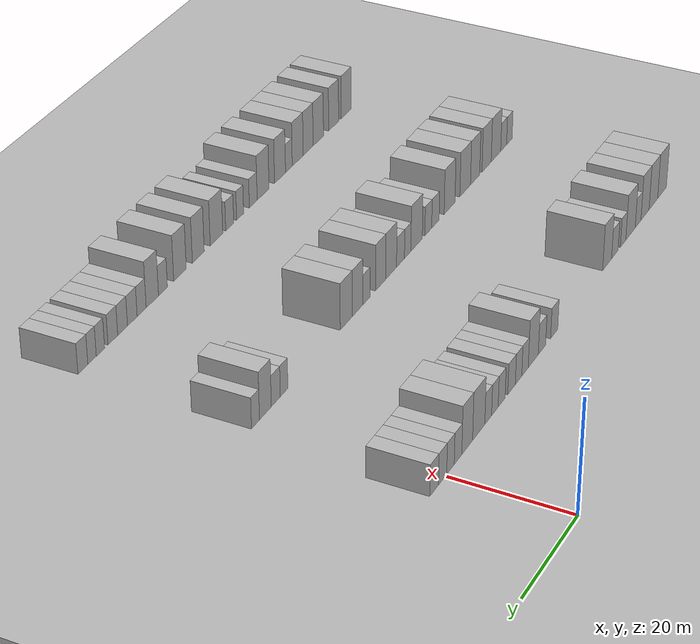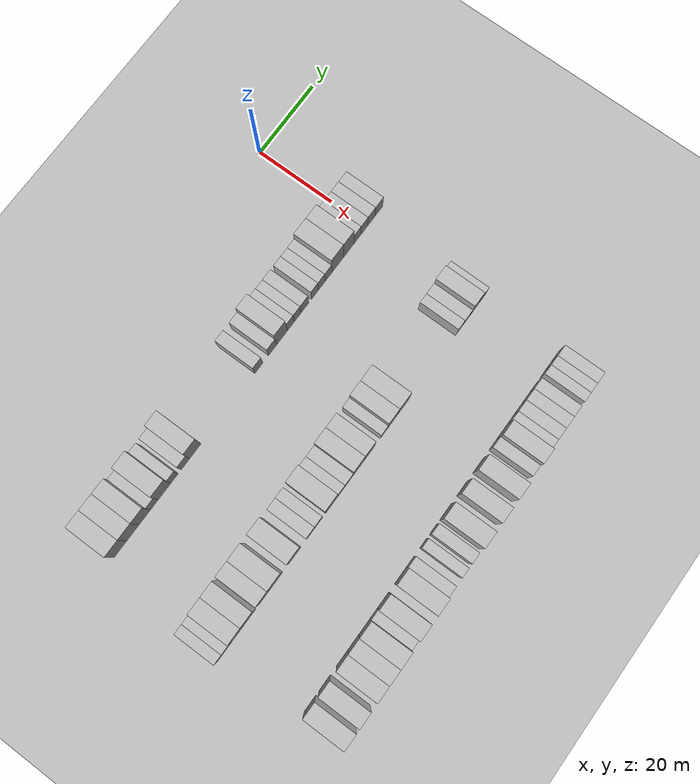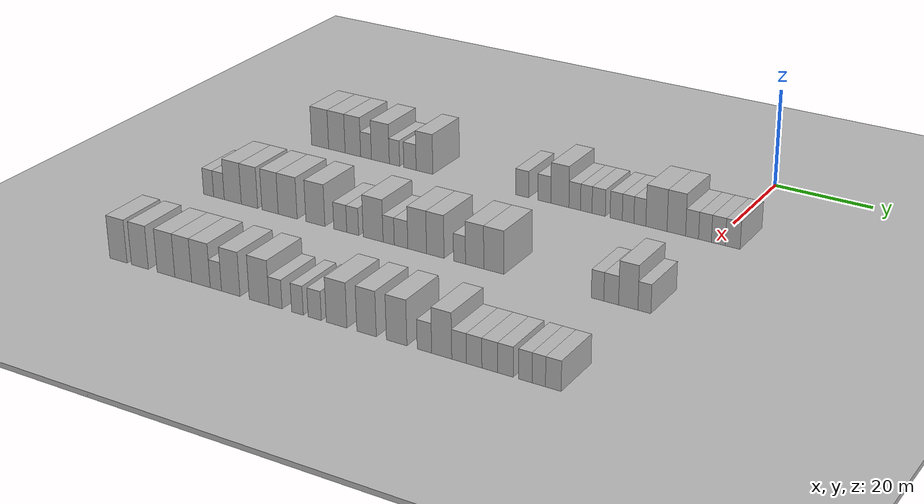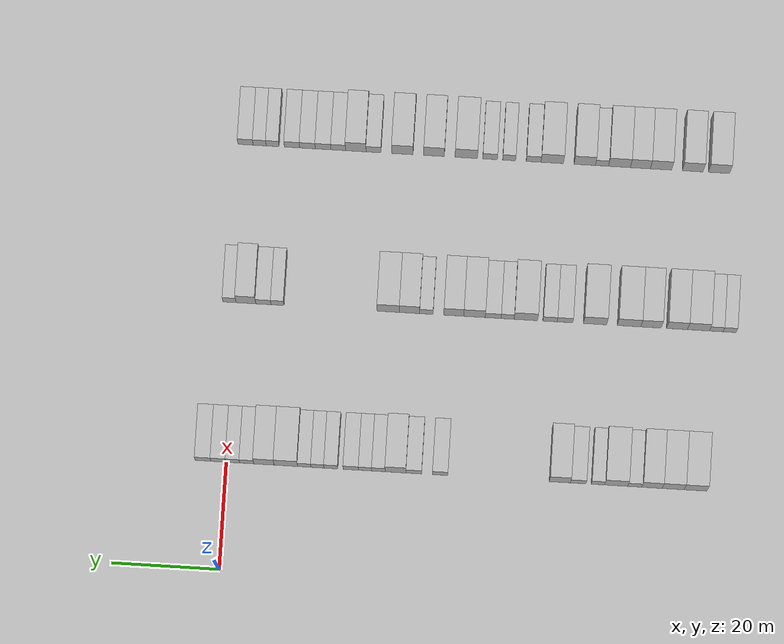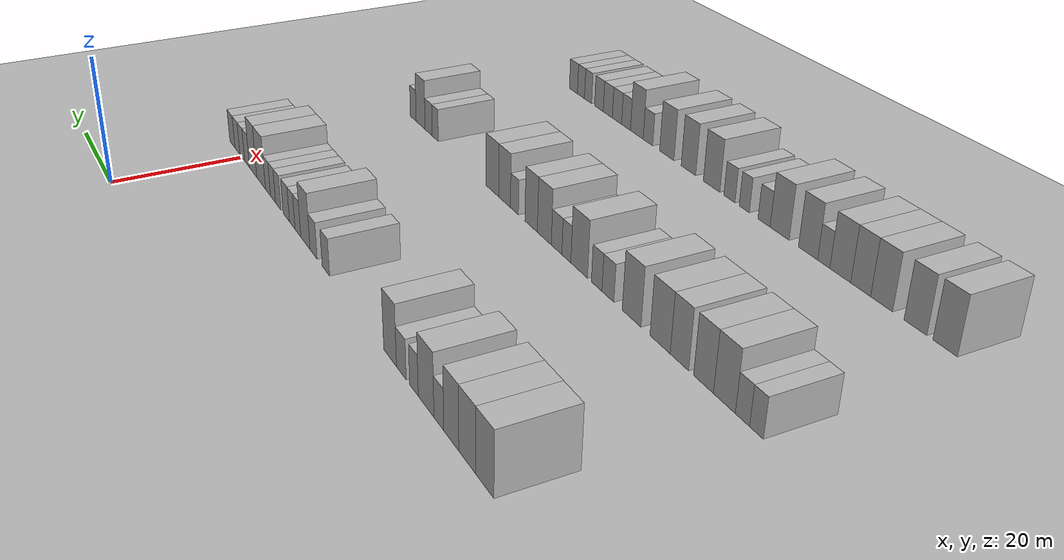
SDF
<sdf version="1.6">
 <world name="default">
  <include><name>ground_plane_1</name><uri>model://HANNAS_ground_plane</uri></include>
  <include>
   <name>ground_plane_2</name>
   <uri>model://HANNAS_ground_plane</uri>
   <pose>100 0 0  0 0 0</pose>
  </include>
  <model name="building_49">
   <static>1</static>
   <pose>25.0000 -87.2521 0 0.000000 0.000000 0.000000</pose>
   <link name="link">
    <pose>0 0 4.50 0 0 0</pose>
    <collision name="collision"><geometry><box><size>10.0000 4.2227 9.0000</size></box></geometry></collision>
    <visual name="visual">
     <cast_shadows>0</cast_shadows>
     <geometry><box><size>10.0000 4.2227 9.0000</size></box></geometry>
     <material>
      <script>
       <uri>model://HANNAS_wall/materials/scripts</uri>
       <uri>model://HANNAS_wall/materials/textures</uri>
       <name>vrc/HANNAS_wall</name>
      </script>
     </material>
    </visual>
   </link>
  </model>
  <model name="building_50">
   <static>1</static>
   <pose>25.0000 -83.1014 0 0.000000 0.000000 0.000000</pose>
   <link name="link">
    <pose>0 0 4.50 0 0 0</pose>
    <collision name="collision"><geometry><box><size>10.0000 4.0787 9.0000</size></box></geometry></collision>
    <visual name="visual">
     <cast_shadows>0</cast_shadows>
     <geometry><box><size>10.0000 4.0787 9.0000</size></box></geometry>
     <material>
      <script>
       <uri>model://HANNAS_wall/materials/scripts</uri>
       <uri>model://HANNAS_wall/materials/textures</uri>
       <name>vrc/HANNAS_wall</name>
      </script>
     </material>
    </visual>
   </link>
  </model>
  <model name="building_51">
   <static>1</static>
   <pose>25.0000 -79.1638 0 0.000000 0.000000 0.000000</pose>
   <link name="link">
    <pose>0 0 4.50 0 0 0</pose>
    <collision name="collision"><geometry><box><size>10.0000 3.7964 9.0000</size></box></geometry></collision>
    <visual name="visual">
     <cast_shadows>0</cast_shadows>
     <geometry><box><size>10.0000 3.7964 9.0000</size></box></geometry>
     <material>
      <script>
       <uri>model://HANNAS_wall/materials/scripts</uri>
       <uri>model://HANNAS_wall/materials/textures</uri>
       <name>vrc/HANNAS_wall</name>
      </script>
     </material>
    </visual>
   </link>
  </model>
  <model name="building_52">
   <static>1</static>
   <pose>25.0000 -75.9613 0 0.000000 0.000000 0.000000</pose>
   <link name="link">
    <pose>0 0 3.00 0 0 0</pose>
    <collision name="collision"><geometry><box><size>10.0000 2.6087 6.0000</size></box></geometry></collision>
    <visual name="visual">
     <cast_shadows>0</cast_shadows>
     <geometry><box><size>10.0000 2.6087 6.0000</size></box></geometry>
     <material>
      <script>
       <uri>model://HANNAS_wall/materials/scripts</uri>
       <uri>model://HANNAS_wall/materials/textures</uri>
       <name>vrc/HANNAS_wall</name>
      </script>
     </material>
    </visual>
   </link>
  </model>
  <model name="building_53">
   <static>1</static>
   <pose>25.0000 -72.5091 0 0.000000 0.000000 0.000000</pose>
   <link name="link">
    <pose>0 0 4.50 0 0 0</pose>
    <collision name="collision"><geometry><box><size>10.0000 4.2957 9.0000</size></box></geometry></collision>
    <visual name="visual">
     <cast_shadows>0</cast_shadows>
     <geometry><box><size>10.0000 4.2957 9.0000</size></box></geometry>
     <material>
      <script>
       <uri>model://HANNAS_wall/materials/scripts</uri>
       <uri>model://HANNAS_wall/materials/textures</uri>
       <name>vrc/HANNAS_wall</name>
      </script>
     </material>
    </visual>
   </link>
  </model>
  <model name="building_54">
   <static>1</static>
   <pose>25.0000 -69.1283 0 0.000000 0.000000 0.000000</pose>
   <link name="link">
    <pose>0 0 3.00 0 0 0</pose>
    <collision name="collision"><geometry><box><size>10.0000 2.4661 6.0000</size></box></geometry></collision>
    <visual name="visual">
     <cast_shadows>0</cast_shadows>
     <geometry><box><size>10.0000 2.4661 6.0000</size></box></geometry>
     <material>
      <script>
       <uri>model://HANNAS_wall/materials/scripts</uri>
       <uri>model://HANNAS_wall/materials/textures</uri>
       <name>vrc/HANNAS_wall</name>
      </script>
     </material>
    </visual>
   </link>
  </model>
  <model name="building_55">
   <static>1</static>
   <pose>25.0000 -65.4440 0 0.000000 0.000000 0.000000</pose>
   <link name="link">
    <pose>0 0 3.00 0 0 0</pose>
    <collision name="collision"><geometry><box><size>10.0000 2.9026 6.0000</size></box></geometry></collision>
    <visual name="visual">
     <cast_shadows>0</cast_shadows>
     <geometry><box><size>10.0000 2.9026 6.0000</size></box></geometry>
     <material>
      <script>
       <uri>model://HANNAS_wall/materials/scripts</uri>
       <uri>model://HANNAS_wall/materials/textures</uri>
       <name>vrc/HANNAS_wall</name>
      </script>
     </material>
    </visual>
   </link>
  </model>
  <model name="building_56">
   <static>1</static>
   <pose>25.0000 -62.0371 0 0.000000 0.000000 0.000000</pose>
   <link name="link">
    <pose>0 0 4.50 0 0 0</pose>
    <collision name="collision"><geometry><box><size>10.0000 3.9111 9.0000</size></box></geometry></collision>
    <visual name="visual">
     <cast_shadows>0</cast_shadows>
     <geometry><box><size>10.0000 3.9111 9.0000</size></box></geometry>
     <material>
      <script>
       <uri>model://HANNAS_wall/materials/scripts</uri>
       <uri>model://HANNAS_wall/materials/textures</uri>
       <name>vrc/HANNAS_wall</name>
      </script>
     </material>
    </visual>
   </link>
  </model>
  <model name="building_57">
   <static>1</static>
   <pose>25.0000 -39.7772 0 0.000000 0.000000 0.000000</pose>
   <link name="link">
    <pose>0 0 3.00 0 0 0</pose>
    <collision name="collision"><geometry><box><size>10.0000 2.8696 6.0000</size></box></geometry></collision>
    <visual name="visual">
     <cast_shadows>0</cast_shadows>
     <geometry><box><size>10.0000 2.8696 6.0000</size></box></geometry>
     <material>
      <script>
       <uri>model://HANNAS_wall/materials/scripts</uri>
       <uri>model://HANNAS_wall/materials/textures</uri>
       <name>vrc/HANNAS_wall</name>
      </script>
     </material>
    </visual>
   </link>
  </model>
  <model name="building_58">
   <static>1</static>
   <pose>25.0000 -34.8943 0 0.000000 0.000000 0.000000</pose>
   <link name="link">
    <pose>0 0 3.00 0 0 0</pose>
    <collision name="collision"><geometry><box><size>10.0000 2.8963 6.0000</size></box></geometry></collision>
    <visual name="visual">
     <cast_shadows>0</cast_shadows>
     <geometry><box><size>10.0000 2.8963 6.0000</size></box></geometry>
     <material>
      <script>
       <uri>model://HANNAS_wall/materials/scripts</uri>
       <uri>model://HANNAS_wall/materials/textures</uri>
       <name>vrc/HANNAS_wall</name>
      </script>
     </material>
    </visual>
   </link>
  </model>
  <model name="building_59">
   <static>1</static>
   <pose>25.0000 -31.4945 0 0.000000 0.000000 0.000000</pose>
   <link name="link">
    <pose>0 0 4.50 0 0 0</pose>
    <collision name="collision"><geometry><box><size>10.0000 3.9032 9.0000</size></box></geometry></collision>
    <visual name="visual">
     <cast_shadows>0</cast_shadows>
     <geometry><box><size>10.0000 3.9032 9.0000</size></box></geometry>
     <material>
      <script>
       <uri>model://HANNAS_wall/materials/scripts</uri>
       <uri>model://HANNAS_wall/materials/textures</uri>
       <name>vrc/HANNAS_wall</name>
      </script>
     </material>
    </visual>
   </link>
  </model>
  <model name="building_60">
   <static>1</static>
   <pose>25.0000 -28.2952 0 0.000000 0.000000 0.000000</pose>
   <link name="link">
    <pose>0 0 3.00 0 0 0</pose>
    <collision name="collision"><geometry><box><size>10.0000 2.4956 6.0000</size></box></geometry></collision>
    <visual name="visual">
     <cast_shadows>0</cast_shadows>
     <geometry><box><size>10.0000 2.4956 6.0000</size></box></geometry>
     <material>
      <script>
       <uri>model://HANNAS_wall/materials/scripts</uri>
       <uri>model://HANNAS_wall/materials/textures</uri>
       <name>vrc/HANNAS_wall</name>
      </script>
     </material>
    </visual>
   </link>
  </model>
  <model name="building_61">
   <static>1</static>
   <pose>25.0000 -25.8230 0 0.000000 0.000000 0.000000</pose>
   <link name="link">
    <pose>0 0 3.00 0 0 0</pose>
    <collision name="collision"><geometry><box><size>10.0000 2.4488 6.0000</size></box></geometry></collision>
    <visual name="visual">
     <cast_shadows>0</cast_shadows>
     <geometry><box><size>10.0000 2.4488 6.0000</size></box></geometry>
     <material>
      <script>
       <uri>model://HANNAS_wall/materials/scripts</uri>
       <uri>model://HANNAS_wall/materials/textures</uri>
       <name>vrc/HANNAS_wall</name>
      </script>
     </material>
    </visual>
   </link>
  </model>
  <model name="building_62">
   <static>1</static>
   <pose>25.0000 -23.1798 0 0.000000 0.000000 0.000000</pose>
   <link name="link">
    <pose>0 0 3.00 0 0 0</pose>
    <collision name="collision"><geometry><box><size>10.0000 2.8376 6.0000</size></box></geometry></collision>
    <visual name="visual">
     <cast_shadows>0</cast_shadows>
     <geometry><box><size>10.0000 2.8376 6.0000</size></box></geometry>
     <material>
      <script>
       <uri>model://HANNAS_wall/materials/scripts</uri>
       <uri>model://HANNAS_wall/materials/textures</uri>
       <name>vrc/HANNAS_wall</name>
      </script>
     </material>
    </visual>
   </link>
  </model>
  <model name="building_63">
   <static>1</static>
   <pose>25.0000 -19.4813 0 0.000000 0.000000 0.000000</pose>
   <link name="link">
    <pose>0 0 3.00 0 0 0</pose>
    <collision name="collision"><geometry><box><size>10.0000 2.5593 6.0000</size></box></geometry></collision>
    <visual name="visual">
     <cast_shadows>0</cast_shadows>
     <geometry><box><size>10.0000 2.5593 6.0000</size></box></geometry>
     <material>
      <script>
       <uri>model://HANNAS_wall/materials/scripts</uri>
       <uri>model://HANNAS_wall/materials/textures</uri>
       <name>vrc/HANNAS_wall</name>
      </script>
     </material>
    </visual>
   </link>
  </model>
  <model name="building_64">
   <static>1</static>
   <pose>25.0000 -16.9886 0 0.000000 0.000000 0.000000</pose>
   <link name="link">
    <pose>0 0 3.00 0 0 0</pose>
    <collision name="collision"><geometry><box><size>10.0000 2.4261 6.0000</size></box></geometry></collision>
    <visual name="visual">
     <cast_shadows>0</cast_shadows>
     <geometry><box><size>10.0000 2.4261 6.0000</size></box></geometry>
     <material>
      <script>
       <uri>model://HANNAS_wall/materials/scripts</uri>
       <uri>model://HANNAS_wall/materials/textures</uri>
       <name>vrc/HANNAS_wall</name>
      </script>
     </material>
    </visual>
   </link>
  </model>
  <model name="building_65">
   <static>1</static>
   <pose>25.0000 -14.5397 0 0.000000 0.000000 0.000000</pose>
   <link name="link">
    <pose>0 0 3.00 0 0 0</pose>
    <collision name="collision"><geometry><box><size>10.0000 2.4717 6.0000</size></box></geometry></collision>
    <visual name="visual">
     <cast_shadows>0</cast_shadows>
     <geometry><box><size>10.0000 2.4717 6.0000</size></box></geometry>
     <material>
      <script>
       <uri>model://HANNAS_wall/materials/scripts</uri>
       <uri>model://HANNAS_wall/materials/textures</uri>
       <name>vrc/HANNAS_wall</name>
      </script>
     </material>
    </visual>
   </link>
  </model>
  <model name="building_66">
   <static>1</static>
   <pose>25.0000 -11.1215 0 0.000000 0.000000 0.000000</pose>
   <link name="link">
    <pose>0 0 4.50 0 0 0</pose>
    <collision name="collision"><geometry><box><size>10.0000 4.3648 9.0000</size></box></geometry></collision>
    <visual name="visual">
     <cast_shadows>0</cast_shadows>
     <geometry><box><size>10.0000 4.3648 9.0000</size></box></geometry>
     <material>
      <script>
       <uri>model://HANNAS_wall/materials/scripts</uri>
       <uri>model://HANNAS_wall/materials/textures</uri>
       <name>vrc/HANNAS_wall</name>
      </script>
     </material>
    </visual>
   </link>
  </model>
  <model name="building_67">
   <static>1</static>
   <pose>25.0000 -7.0458 0 0.000000 0.000000 0.000000</pose>
   <link name="link">
    <pose>0 0 4.50 0 0 0</pose>
    <collision name="collision"><geometry><box><size>10.0000 3.7866 9.0000</size></box></geometry></collision>
    <visual name="visual">
     <cast_shadows>0</cast_shadows>
     <geometry><box><size>10.0000 3.7866 9.0000</size></box></geometry>
     <material>
      <script>
       <uri>model://HANNAS_wall/materials/scripts</uri>
       <uri>model://HANNAS_wall/materials/textures</uri>
       <name>vrc/HANNAS_wall</name>
      </script>
     </material>
    </visual>
   </link>
  </model>
  <model name="building_68">
   <static>1</static>
   <pose>25.0000 -3.8396 0 0.000000 0.000000 0.000000</pose>
   <link name="link">
    <pose>0 0 3.00 0 0 0</pose>
    <collision name="collision"><geometry><box><size>10.0000 2.6257 6.0000</size></box></geometry></collision>
    <visual name="visual">
     <cast_shadows>0</cast_shadows>
     <geometry><box><size>10.0000 2.6257 6.0000</size></box></geometry>
     <material>
      <script>
       <uri>model://HANNAS_wall/materials/scripts</uri>
       <uri>model://HANNAS_wall/materials/textures</uri>
       <name>vrc/HANNAS_wall</name>
      </script>
     </material>
    </visual>
   </link>
  </model>
  <model name="building_69">
   <static>1</static>
   <pose>25.0000 -1.2427 0 0.000000 0.000000 0.000000</pose>
   <link name="link">
    <pose>0 0 3.00 0 0 0</pose>
    <collision name="collision"><geometry><box><size>10.0000 2.5681 6.0000</size></box></geometry></collision>
    <visual name="visual">
     <cast_shadows>0</cast_shadows>
     <geometry><box><size>10.0000 2.5681 6.0000</size></box></geometry>
     <material>
      <script>
       <uri>model://HANNAS_wall/materials/scripts</uri>
       <uri>model://HANNAS_wall/materials/textures</uri>
       <name>vrc/HANNAS_wall</name>
      </script>
     </material>
    </visual>
   </link>
  </model>
  <model name="building_70">
   <static>1</static>
   <pose>25.0000 1.4318 0 0.000000 0.000000 0.000000</pose>
   <link name="link">
    <pose>0 0 3.00 0 0 0</pose>
    <collision name="collision"><geometry><box><size>10.0000 2.7810 6.0000</size></box></geometry></collision>
    <visual name="visual">
     <cast_shadows>0</cast_shadows>
     <geometry><box><size>10.0000 2.7810 6.0000</size></box></geometry>
     <material>
      <script>
       <uri>model://HANNAS_wall/materials/scripts</uri>
       <uri>model://HANNAS_wall/materials/textures</uri>
       <name>vrc/HANNAS_wall</name>
      </script>
     </material>
    </visual>
   </link>
  </model>
  <model name="building_71">
   <static>1</static>
   <pose>25.0000 4.2804 0 0.000000 0.000000 0.000000</pose>
   <link name="link">
    <pose>0 0 3.00 0 0 0</pose>
    <collision name="collision"><geometry><box><size>10.0000 2.9163 6.0000</size></box></geometry></collision>
    <visual name="visual">
     <cast_shadows>0</cast_shadows>
     <geometry><box><size>10.0000 2.9163 6.0000</size></box></geometry>
     <material>
      <script>
       <uri>model://HANNAS_wall/materials/scripts</uri>
       <uri>model://HANNAS_wall/materials/textures</uri>
       <name>vrc/HANNAS_wall</name>
      </script>
     </material>
    </visual>
   </link>
  </model>
  <model name="building_177">
   <static>1</static>
   <pose>55.0000 -92.0925 0 0.000000 0.000000 0.000000</pose>
   <link name="link">
    <pose>0 0 3.00 0 0 0</pose>
    <collision name="collision"><geometry><box><size>10.0000 2.4353 6.0000</size></box></geometry></collision>
    <visual name="visual">
     <cast_shadows>0</cast_shadows>
     <geometry><box><size>10.0000 2.4353 6.0000</size></box></geometry>
     <material>
      <script>
       <uri>model://HANNAS_wall/materials/scripts</uri>
       <uri>model://HANNAS_wall/materials/textures</uri>
       <name>vrc/HANNAS_wall</name>
      </script>
     </material>
    </visual>
   </link>
  </model>
  <model name="building_178">
   <static>1</static>
   <pose>55.0000 -89.5919 0 0.000000 0.000000 0.000000</pose>
   <link name="link">
    <pose>0 0 3.00 0 0 0</pose>
    <collision name="collision"><geometry><box><size>10.0000 2.5658 6.0000</size></box></geometry></collision>
    <visual name="visual">
     <cast_shadows>0</cast_shadows>
     <geometry><box><size>10.0000 2.5658 6.0000</size></box></geometry>
     <material>
      <script>
       <uri>model://HANNAS_wall/materials/scripts</uri>
       <uri>model://HANNAS_wall/materials/textures</uri>
       <name>vrc/HANNAS_wall</name>
      </script>
     </material>
    </visual>
   </link>
  </model>
  <model name="building_179">
   <static>1</static>
   <pose>55.0000 -86.2620 0 0.000000 0.000000 0.000000</pose>
   <link name="link">
    <pose>0 0 4.50 0 0 0</pose>
    <collision name="collision"><geometry><box><size>10.0000 4.0940 9.0000</size></box></geometry></collision>
    <visual name="visual">
     <cast_shadows>0</cast_shadows>
     <geometry><box><size>10.0000 4.0940 9.0000</size></box></geometry>
     <material>
      <script>
       <uri>model://HANNAS_wall/materials/scripts</uri>
       <uri>model://HANNAS_wall/materials/textures</uri>
       <name>vrc/HANNAS_wall</name>
      </script>
     </material>
    </visual>
   </link>
  </model>
  <model name="building_180">
   <static>1</static>
   <pose>55.0000 -82.2673 0 0.000000 0.000000 0.000000</pose>
   <link name="link">
    <pose>0 0 4.50 0 0 0</pose>
    <collision name="collision"><geometry><box><size>10.0000 3.8955 9.0000</size></box></geometry></collision>
    <visual name="visual">
     <cast_shadows>0</cast_shadows>
     <geometry><box><size>10.0000 3.8955 9.0000</size></box></geometry>
     <material>
      <script>
       <uri>model://HANNAS_wall/materials/scripts</uri>
       <uri>model://HANNAS_wall/materials/textures</uri>
       <name>vrc/HANNAS_wall</name>
      </script>
     </material>
    </visual>
   </link>
  </model>
  <model name="building_181">
   <static>1</static>
   <pose>55.0000 -77.4086 0 0.000000 0.000000 0.000000</pose>
   <link name="link">
    <pose>0 0 4.50 0 0 0</pose>
    <collision name="collision"><geometry><box><size>10.0000 3.8219 9.0000</size></box></geometry></collision>
    <visual name="visual">
     <cast_shadows>0</cast_shadows>
     <geometry><box><size>10.0000 3.8219 9.0000</size></box></geometry>
     <material>
      <script>
       <uri>model://HANNAS_wall/materials/scripts</uri>
       <uri>model://HANNAS_wall/materials/textures</uri>
       <name>vrc/HANNAS_wall</name>
      </script>
     </material>
    </visual>
   </link>
  </model>
  <model name="building_182">
   <static>1</static>
   <pose>55.0000 -73.3087 0 0.000000 0.000000 0.000000</pose>
   <link name="link">
    <pose>0 0 4.50 0 0 0</pose>
    <collision name="collision"><geometry><box><size>10.0000 4.3779 9.0000</size></box></geometry></collision>
    <visual name="visual">
     <cast_shadows>0</cast_shadows>
     <geometry><box><size>10.0000 4.3779 9.0000</size></box></geometry>
     <material>
      <script>
       <uri>model://HANNAS_wall/materials/scripts</uri>
       <uri>model://HANNAS_wall/materials/textures</uri>
       <name>vrc/HANNAS_wall</name>
      </script>
     </material>
    </visual>
   </link>
  </model>
  <model name="building_183">
   <static>1</static>
   <pose>55.0000 -66.9469 0 0.000000 0.000000 0.000000</pose>
   <link name="link">
    <pose>0 0 4.50 0 0 0</pose>
    <collision name="collision"><geometry><box><size>10.0000 4.3457 9.0000</size></box></geometry></collision>
    <visual name="visual">
     <cast_shadows>0</cast_shadows>
     <geometry><box><size>10.0000 4.3457 9.0000</size></box></geometry>
     <material>
      <script>
       <uri>model://HANNAS_wall/materials/scripts</uri>
       <uri>model://HANNAS_wall/materials/textures</uri>
       <name>vrc/HANNAS_wall</name>
      </script>
     </material>
    </visual>
   </link>
  </model>
  <model name="building_184">
   <static>1</static>
   <pose>55.0000 -61.3167 0 0.000000 0.000000 0.000000</pose>
   <link name="link">
    <pose>0 0 3.00 0 0 0</pose>
    <collision name="collision"><geometry><box><size>10.0000 2.9147 6.0000</size></box></geometry></collision>
    <visual name="visual">
     <cast_shadows>0</cast_shadows>
     <geometry><box><size>10.0000 2.9147 6.0000</size></box></geometry>
     <material>
      <script>
       <uri>model://HANNAS_wall/materials/scripts</uri>
       <uri>model://HANNAS_wall/materials/textures</uri>
       <name>vrc/HANNAS_wall</name>
      </script>
     </material>
    </visual>
   </link>
  </model>
  <model name="building_185">
   <static>1</static>
   <pose>55.0000 -58.5292 0 0.000000 0.000000 0.000000</pose>
   <link name="link">
    <pose>0 0 3.00 0 0 0</pose>
    <collision name="collision"><geometry><box><size>10.0000 2.6602 6.0000</size></box></geometry></collision>
    <visual name="visual">
     <cast_shadows>0</cast_shadows>
     <geometry><box><size>10.0000 2.6602 6.0000</size></box></geometry>
     <material>
      <script>
       <uri>model://HANNAS_wall/materials/scripts</uri>
       <uri>model://HANNAS_wall/materials/textures</uri>
       <name>vrc/HANNAS_wall</name>
      </script>
     </material>
    </visual>
   </link>
  </model>
  <model name="building_186">
   <static>1</static>
   <pose>55.0000 -54.0063 0 0.000000 0.000000 0.000000</pose>
   <link name="link">
    <pose>0 0 4.50 0 0 0</pose>
    <collision name="collision"><geometry><box><size>10.0000 4.3857 9.0000</size></box></geometry></collision>
    <visual name="visual">
     <cast_shadows>0</cast_shadows>
     <geometry><box><size>10.0000 4.3857 9.0000</size></box></geometry>
     <material>
      <script>
       <uri>model://HANNAS_wall/materials/scripts</uri>
       <uri>model://HANNAS_wall/materials/textures</uri>
       <name>vrc/HANNAS_wall</name>
      </script>
     </material>
    </visual>
   </link>
  </model>
  <model name="building_187">
   <static>1</static>
   <pose>55.0000 -50.5920 0 0.000000 0.000000 0.000000</pose>
   <link name="link">
    <pose>0 0 3.00 0 0 0</pose>
    <collision name="collision"><geometry><box><size>10.0000 2.4429 6.0000</size></box></geometry></collision>
    <visual name="visual">
     <cast_shadows>0</cast_shadows>
     <geometry><box><size>10.0000 2.4429 6.0000</size></box></geometry>
     <material>
      <script>
       <uri>model://HANNAS_wall/materials/scripts</uri>
       <uri>model://HANNAS_wall/materials/textures</uri>
       <name>vrc/HANNAS_wall</name>
      </script>
     </material>
    </visual>
   </link>
  </model>
  <model name="building_188">
   <static>1</static>
   <pose>55.0000 -47.8993 0 0.000000 0.000000 0.000000</pose>
   <link name="link">
    <pose>0 0 3.00 0 0 0</pose>
    <collision name="collision"><geometry><box><size>10.0000 2.9425 6.0000</size></box></geometry></collision>
    <visual name="visual">
     <cast_shadows>0</cast_shadows>
     <geometry><box><size>10.0000 2.9425 6.0000</size></box></geometry>
     <material>
      <script>
       <uri>model://HANNAS_wall/materials/scripts</uri>
       <uri>model://HANNAS_wall/materials/textures</uri>
       <name>vrc/HANNAS_wall</name>
      </script>
     </material>
    </visual>
   </link>
  </model>
  <model name="building_189">
   <static>1</static>
   <pose>55.0000 -44.4167 0 0.000000 0.000000 0.000000</pose>
   <link name="link">
    <pose>0 0 4.50 0 0 0</pose>
    <collision name="collision"><geometry><box><size>10.0000 4.0227 9.0000</size></box></geometry></collision>
    <visual name="visual">
     <cast_shadows>0</cast_shadows>
     <geometry><box><size>10.0000 4.0227 9.0000</size></box></geometry>
     <material>
      <script>
       <uri>model://HANNAS_wall/materials/scripts</uri>
       <uri>model://HANNAS_wall/materials/textures</uri>
       <name>vrc/HANNAS_wall</name>
      </script>
     </material>
    </visual>
   </link>
  </model>
  <model name="building_190">
   <static>1</static>
   <pose>55.0000 -40.5450 0 0.000000 0.000000 0.000000</pose>
   <link name="link">
    <pose>0 0 4.50 0 0 0</pose>
    <collision name="collision"><geometry><box><size>10.0000 3.7207 9.0000</size></box></geometry></collision>
    <visual name="visual">
     <cast_shadows>0</cast_shadows>
     <geometry><box><size>10.0000 3.7207 9.0000</size></box></geometry>
     <material>
      <script>
       <uri>model://HANNAS_wall/materials/scripts</uri>
       <uri>model://HANNAS_wall/materials/textures</uri>
       <name>vrc/HANNAS_wall</name>
      </script>
     </material>
    </visual>
   </link>
  </model>
  <model name="building_191">
   <static>1</static>
   <pose>55.0000 -35.4329 0 0.000000 0.000000 0.000000</pose>
   <link name="link">
    <pose>0 0 3.00 0 0 0</pose>
    <collision name="collision"><geometry><box><size>10.0000 2.5034 6.0000</size></box></geometry></collision>
    <visual name="visual">
     <cast_shadows>0</cast_shadows>
     <geometry><box><size>10.0000 2.5034 6.0000</size></box></geometry>
     <material>
      <script>
       <uri>model://HANNAS_wall/materials/scripts</uri>
       <uri>model://HANNAS_wall/materials/textures</uri>
       <name>vrc/HANNAS_wall</name>
      </script>
     </material>
    </visual>
   </link>
  </model>
  <model name="building_192">
   <static>1</static>
   <pose>55.0000 -32.2838 0 0.000000 0.000000 0.000000</pose>
   <link name="link">
    <pose>0 0 4.50 0 0 0</pose>
    <collision name="collision"><geometry><box><size>10.0000 3.7947 9.0000</size></box></geometry></collision>
    <visual name="visual">
     <cast_shadows>0</cast_shadows>
     <geometry><box><size>10.0000 3.7947 9.0000</size></box></geometry>
     <material>
      <script>
       <uri>model://HANNAS_wall/materials/scripts</uri>
       <uri>model://HANNAS_wall/materials/textures</uri>
       <name>vrc/HANNAS_wall</name>
      </script>
     </material>
    </visual>
   </link>
  </model>
  <model name="building_193">
   <static>1</static>
   <pose>55.0000 -28.3087 0 0.000000 0.000000 0.000000</pose>
   <link name="link">
    <pose>0 0 4.50 0 0 0</pose>
    <collision name="collision"><geometry><box><size>10.0000 4.1557 9.0000</size></box></geometry></collision>
    <visual name="visual">
     <cast_shadows>0</cast_shadows>
     <geometry><box><size>10.0000 4.1557 9.0000</size></box></geometry>
     <material>
      <script>
       <uri>model://HANNAS_wall/materials/scripts</uri>
       <uri>model://HANNAS_wall/materials/textures</uri>
       <name>vrc/HANNAS_wall</name>
      </script>
     </material>
    </visual>
   </link>
  </model>
  <model name="building_194">
   <static>1</static>
   <pose>55.0000 -7.6068 0 0.000000 0.000000 0.000000</pose>
   <link name="link">
    <pose>0 0 3.00 0 0 0</pose>
    <collision name="collision"><geometry><box><size>10.0000 2.4160 6.0000</size></box></geometry></collision>
    <visual name="visual">
     <cast_shadows>0</cast_shadows>
     <geometry><box><size>10.0000 2.4160 6.0000</size></box></geometry>
     <material>
      <script>
       <uri>model://HANNAS_wall/materials/scripts</uri>
       <uri>model://HANNAS_wall/materials/textures</uri>
       <name>vrc/HANNAS_wall</name>
      </script>
     </material>
    </visual>
   </link>
  </model>
  <model name="building_195">
   <static>1</static>
   <pose>55.0000 -4.9760 0 0.000000 0.000000 0.000000</pose>
   <link name="link">
    <pose>0 0 3.00 0 0 0</pose>
    <collision name="collision"><geometry><box><size>10.0000 2.8454 6.0000</size></box></geometry></collision>
    <visual name="visual">
     <cast_shadows>0</cast_shadows>
     <geometry><box><size>10.0000 2.8454 6.0000</size></box></geometry>
     <material>
      <script>
       <uri>model://HANNAS_wall/materials/scripts</uri>
       <uri>model://HANNAS_wall/materials/textures</uri>
       <name>vrc/HANNAS_wall</name>
      </script>
     </material>
    </visual>
   </link>
  </model>
  <model name="building_196">
   <static>1</static>
   <pose>55.0000 -1.7102 0 0.000000 0.000000 0.000000</pose>
   <link name="link">
    <pose>0 0 4.50 0 0 0</pose>
    <collision name="collision"><geometry><box><size>10.0000 3.6862 9.0000</size></box></geometry></collision>
    <visual name="visual">
     <cast_shadows>0</cast_shadows>
     <geometry><box><size>10.0000 3.6862 9.0000</size></box></geometry>
     <material>
      <script>
       <uri>model://HANNAS_wall/materials/scripts</uri>
       <uri>model://HANNAS_wall/materials/textures</uri>
       <name>vrc/HANNAS_wall</name>
      </script>
     </material>
    </visual>
   </link>
  </model>
  <model name="building_197">
   <static>1</static>
   <pose>55.0000 1.3608 0 0.000000 0.000000 0.000000</pose>
   <link name="link">
    <pose>0 0 3.00 0 0 0</pose>
    <collision name="collision"><geometry><box><size>10.0000 2.4559 6.0000</size></box></geometry></collision>
    <visual name="visual">
     <cast_shadows>0</cast_shadows>
     <geometry><box><size>10.0000 2.4559 6.0000</size></box></geometry>
     <material>
      <script>
       <uri>model://HANNAS_wall/materials/scripts</uri>
       <uri>model://HANNAS_wall/materials/textures</uri>
       <name>vrc/HANNAS_wall</name>
      </script>
     </material>
    </visual>
   </link>
  </model>
  <model name="building_317">
   <static>1</static>
   <pose>85.0000 -88.5921 0 0.000000 0.000000 0.000000</pose>
   <link name="link">
    <pose>0 0 4.50 0 0 0</pose>
    <collision name="collision"><geometry><box><size>10.0000 3.9997 9.0000</size></box></geometry></collision>
    <visual name="visual">
     <cast_shadows>0</cast_shadows>
     <geometry><box><size>10.0000 3.9997 9.0000</size></box></geometry>
     <material>
      <script>
       <uri>model://HANNAS_wall/materials/scripts</uri>
       <uri>model://HANNAS_wall/materials/textures</uri>
       <name>vrc/HANNAS_wall</name>
      </script>
     </material>
    </visual>
   </link>
  </model>
  <model name="building_318">
   <static>1</static>
   <pose>85.0000 -83.6444 0 0.000000 0.000000 0.000000</pose>
   <link name="link">
    <pose>0 0 4.50 0 0 0</pose>
    <collision name="collision"><geometry><box><size>10.0000 3.8958 9.0000</size></box></geometry></collision>
    <visual name="visual">
     <cast_shadows>0</cast_shadows>
     <geometry><box><size>10.0000 3.8958 9.0000</size></box></geometry>
     <material>
      <script>
       <uri>model://HANNAS_wall/materials/scripts</uri>
       <uri>model://HANNAS_wall/materials/textures</uri>
       <name>vrc/HANNAS_wall</name>
      </script>
     </material>
    </visual>
   </link>
  </model>
  <model name="building_319">
   <static>1</static>
   <pose>85.0000 -77.6984 0 0.000000 0.000000 0.000000</pose>
   <link name="link">
    <pose>0 0 4.50 0 0 0</pose>
    <collision name="collision"><geometry><box><size>10.0000 3.9963 9.0000</size></box></geometry></collision>
    <visual name="visual">
     <cast_shadows>0</cast_shadows>
     <geometry><box><size>10.0000 3.9963 9.0000</size></box></geometry>
     <material>
      <script>
       <uri>model://HANNAS_wall/materials/scripts</uri>
       <uri>model://HANNAS_wall/materials/textures</uri>
       <name>vrc/HANNAS_wall</name>
      </script>
     </material>
    </visual>
   </link>
  </model>
  <model name="building_320">
   <static>1</static>
   <pose>85.0000 -73.8204 0 0.000000 0.000000 0.000000</pose>
   <link name="link">
    <pose>0 0 4.50 0 0 0</pose>
    <collision name="collision"><geometry><box><size>10.0000 3.7596 9.0000</size></box></geometry></collision>
    <visual name="visual">
     <cast_shadows>0</cast_shadows>
     <geometry><box><size>10.0000 3.7596 9.0000</size></box></geometry>
     <material>
      <script>
       <uri>model://HANNAS_wall/materials/scripts</uri>
       <uri>model://HANNAS_wall/materials/textures</uri>
       <name>vrc/HANNAS_wall</name>
      </script>
     </material>
    </visual>
   </link>
  </model>
  <model name="building_321">
   <static>1</static>
   <pose>85.0000 -69.8910 0 0.000000 0.000000 0.000000</pose>
   <link name="link">
    <pose>0 0 4.50 0 0 0</pose>
    <collision name="collision"><geometry><box><size>10.0000 4.0993 9.0000</size></box></geometry></collision>
    <visual name="visual">
     <cast_shadows>0</cast_shadows>
     <geometry><box><size>10.0000 4.0993 9.0000</size></box></geometry>
     <material>
      <script>
       <uri>model://HANNAS_wall/materials/scripts</uri>
       <uri>model://HANNAS_wall/materials/textures</uri>
       <name>vrc/HANNAS_wall</name>
      </script>
     </material>
    </visual>
   </link>
  </model>
  <model name="building_322">
   <static>1</static>
   <pose>85.0000 -66.6035 0 0.000000 0.000000 0.000000</pose>
   <link name="link">
    <pose>0 0 3.00 0 0 0</pose>
    <collision name="collision"><geometry><box><size>10.0000 2.4757 6.0000</size></box></geometry></collision>
    <visual name="visual">
     <cast_shadows>0</cast_shadows>
     <geometry><box><size>10.0000 2.4757 6.0000</size></box></geometry>
     <material>
      <script>
       <uri>model://HANNAS_wall/materials/scripts</uri>
       <uri>model://HANNAS_wall/materials/textures</uri>
       <name>vrc/HANNAS_wall</name>
      </script>
     </material>
    </visual>
   </link>
  </model>
  <model name="building_323">
   <static>1</static>
   <pose>85.0000 -63.3656 0 0.000000 0.000000 0.000000</pose>
   <link name="link">
    <pose>0 0 4.50 0 0 0</pose>
    <collision name="collision"><geometry><box><size>10.0000 4.0002 9.0000</size></box></geometry></collision>
    <visual name="visual">
     <cast_shadows>0</cast_shadows>
     <geometry><box><size>10.0000 4.0002 9.0000</size></box></geometry>
     <material>
      <script>
       <uri>model://HANNAS_wall/materials/scripts</uri>
       <uri>model://HANNAS_wall/materials/textures</uri>
       <name>vrc/HANNAS_wall</name>
      </script>
     </material>
    </visual>
   </link>
  </model>
  <model name="building_324">
   <static>1</static>
   <pose>85.0000 -57.2564 0 0.000000 0.000000 0.000000</pose>
   <link name="link">
    <pose>0 0 4.50 0 0 0</pose>
    <collision name="collision"><geometry><box><size>10.0000 4.2182 9.0000</size></box></geometry></collision>
    <visual name="visual">
     <cast_shadows>0</cast_shadows>
     <geometry><box><size>10.0000 4.2182 9.0000</size></box></geometry>
     <material>
      <script>
       <uri>model://HANNAS_wall/materials/scripts</uri>
       <uri>model://HANNAS_wall/materials/textures</uri>
       <name>vrc/HANNAS_wall</name>
      </script>
     </material>
    </visual>
   </link>
  </model>
  <model name="building_325">
   <static>1</static>
   <pose>85.0000 -53.7673 0 0.000000 0.000000 0.000000</pose>
   <link name="link">
    <pose>0 0 3.00 0 0 0</pose>
    <collision name="collision"><geometry><box><size>10.0000 2.7600 6.0000</size></box></geometry></collision>
    <visual name="visual">
     <cast_shadows>0</cast_shadows>
     <geometry><box><size>10.0000 2.7600 6.0000</size></box></geometry>
     <material>
      <script>
       <uri>model://HANNAS_wall/materials/scripts</uri>
       <uri>model://HANNAS_wall/materials/textures</uri>
       <name>vrc/HANNAS_wall</name>
      </script>
     </material>
    </visual>
   </link>
  </model>
  <model name="building_326">
   <static>1</static>
   <pose>85.0000 -49.1728 0 0.000000 0.000000 0.000000</pose>
   <link name="link">
    <pose>0 0 3.00 0 0 0</pose>
    <collision name="collision"><geometry><box><size>10.0000 2.4290 6.0000</size></box></geometry></collision>
    <visual name="visual">
     <cast_shadows>0</cast_shadows>
     <geometry><box><size>10.0000 2.4290 6.0000</size></box></geometry>
     <material>
      <script>
       <uri>model://HANNAS_wall/materials/scripts</uri>
       <uri>model://HANNAS_wall/materials/textures</uri>
       <name>vrc/HANNAS_wall</name>
      </script>
     </material>
    </visual>
   </link>
  </model>
  <model name="building_327">
   <static>1</static>
   <pose>85.0000 -45.5907 0 0.000000 0.000000 0.000000</pose>
   <link name="link">
    <pose>0 0 3.00 0 0 0</pose>
    <collision name="collision"><geometry><box><size>10.0000 2.7352 6.0000</size></box></geometry></collision>
    <visual name="visual">
     <cast_shadows>0</cast_shadows>
     <geometry><box><size>10.0000 2.7352 6.0000</size></box></geometry>
     <material>
      <script>
       <uri>model://HANNAS_wall/materials/scripts</uri>
       <uri>model://HANNAS_wall/materials/textures</uri>
       <name>vrc/HANNAS_wall</name>
      </script>
     </material>
    </visual>
   </link>
  </model>
  <model name="building_328">
   <static>1</static>
   <pose>85.0000 -41.1170 0 0.000000 0.000000 0.000000</pose>
   <link name="link">
    <pose>0 0 4.50 0 0 0</pose>
    <collision name="collision"><geometry><box><size>10.0000 4.2121 9.0000</size></box></geometry></collision>
    <visual name="visual">
     <cast_shadows>0</cast_shadows>
     <geometry><box><size>10.0000 4.2121 9.0000</size></box></geometry>
     <material>
      <script>
       <uri>model://HANNAS_wall/materials/scripts</uri>
       <uri>model://HANNAS_wall/materials/textures</uri>
       <name>vrc/HANNAS_wall</name>
      </script>
     </material>
    </visual>
   </link>
  </model>
  <model name="building_329">
   <static>1</static>
   <pose>85.0000 -35.0668 0 0.000000 0.000000 0.000000</pose>
   <link name="link">
    <pose>0 0 4.50 0 0 0</pose>
    <collision name="collision"><geometry><box><size>10.0000 3.8883 9.0000</size></box></geometry></collision>
    <visual name="visual">
     <cast_shadows>0</cast_shadows>
     <geometry><box><size>10.0000 3.8883 9.0000</size></box></geometry>
     <material>
      <script>
       <uri>model://HANNAS_wall/materials/scripts</uri>
       <uri>model://HANNAS_wall/materials/textures</uri>
       <name>vrc/HANNAS_wall</name>
      </script>
     </material>
    </visual>
   </link>
  </model>
  <model name="building_330">
   <static>1</static>
   <pose>85.0000 -29.1061 0 0.000000 0.000000 0.000000</pose>
   <link name="link">
    <pose>0 0 4.50 0 0 0</pose>
    <collision name="collision"><geometry><box><size>10.0000 4.0331 9.0000</size></box></geometry></collision>
    <visual name="visual">
     <cast_shadows>0</cast_shadows>
     <geometry><box><size>10.0000 4.0331 9.0000</size></box></geometry>
     <material>
      <script>
       <uri>model://HANNAS_wall/materials/scripts</uri>
       <uri>model://HANNAS_wall/materials/textures</uri>
       <name>vrc/HANNAS_wall</name>
      </script>
     </material>
    </visual>
   </link>
  </model>
  <model name="building_331">
   <static>1</static>
   <pose>85.0000 -23.6899 0 0.000000 0.000000 0.000000</pose>
   <link name="link">
    <pose>0 0 3.00 0 0 0</pose>
    <collision name="collision"><geometry><box><size>10.0000 2.7994 6.0000</size></box></geometry></collision>
    <visual name="visual">
     <cast_shadows>0</cast_shadows>
     <geometry><box><size>10.0000 2.7994 6.0000</size></box></geometry>
     <material>
      <script>
       <uri>model://HANNAS_wall/materials/scripts</uri>
       <uri>model://HANNAS_wall/materials/textures</uri>
       <name>vrc/HANNAS_wall</name>
      </script>
     </material>
    </visual>
   </link>
  </model>
  <model name="building_332">
   <static>1</static>
   <pose>85.0000 -20.3635 0 0.000000 0.000000 0.000000</pose>
   <link name="link">
    <pose>0 0 4.50 0 0 0</pose>
    <collision name="collision"><geometry><box><size>10.0000 3.8532 9.0000</size></box></geometry></collision>
    <visual name="visual">
     <cast_shadows>0</cast_shadows>
     <geometry><box><size>10.0000 3.8532 9.0000</size></box></geometry>
     <material>
      <script>
       <uri>model://HANNAS_wall/materials/scripts</uri>
       <uri>model://HANNAS_wall/materials/textures</uri>
       <name>vrc/HANNAS_wall</name>
      </script>
     </material>
    </visual>
   </link>
  </model>
  <model name="building_333">
   <static>1</static>
   <pose>85.0000 -17.0582 0 0.000000 0.000000 0.000000</pose>
   <link name="link">
    <pose>0 0 3.00 0 0 0</pose>
    <collision name="collision"><geometry><box><size>10.0000 2.7575 6.0000</size></box></geometry></collision>
    <visual name="visual">
     <cast_shadows>0</cast_shadows>
     <geometry><box><size>10.0000 2.7575 6.0000</size></box></geometry>
     <material>
      <script>
       <uri>model://HANNAS_wall/materials/scripts</uri>
       <uri>model://HANNAS_wall/materials/textures</uri>
       <name>vrc/HANNAS_wall</name>
      </script>
     </material>
    </visual>
   </link>
  </model>
  <model name="building_334">
   <static>1</static>
   <pose>85.0000 -14.2165 0 0.000000 0.000000 0.000000</pose>
   <link name="link">
    <pose>0 0 3.00 0 0 0</pose>
    <collision name="collision"><geometry><box><size>10.0000 2.9260 6.0000</size></box></geometry></collision>
    <visual name="visual">
     <cast_shadows>0</cast_shadows>
     <geometry><box><size>10.0000 2.9260 6.0000</size></box></geometry>
     <material>
      <script>
       <uri>model://HANNAS_wall/materials/scripts</uri>
       <uri>model://HANNAS_wall/materials/textures</uri>
       <name>vrc/HANNAS_wall</name>
      </script>
     </material>
    </visual>
   </link>
  </model>
  <model name="building_335">
   <static>1</static>
   <pose>85.0000 -11.2822 0 0.000000 0.000000 0.000000</pose>
   <link name="link">
    <pose>0 0 3.00 0 0 0</pose>
    <collision name="collision"><geometry><box><size>10.0000 2.9425 6.0000</size></box></geometry></collision>
    <visual name="visual">
     <cast_shadows>0</cast_shadows>
     <geometry><box><size>10.0000 2.9425 6.0000</size></box></geometry>
     <material>
      <script>
       <uri>model://HANNAS_wall/materials/scripts</uri>
       <uri>model://HANNAS_wall/materials/textures</uri>
       <name>vrc/HANNAS_wall</name>
      </script>
     </material>
    </visual>
   </link>
  </model>
  <model name="building_336">
   <static>1</static>
   <pose>85.0000 -8.3791 0 0.000000 0.000000 0.000000</pose>
   <link name="link">
    <pose>0 0 3.00 0 0 0</pose>
    <collision name="collision"><geometry><box><size>10.0000 2.8638 6.0000</size></box></geometry></collision>
    <visual name="visual">
     <cast_shadows>0</cast_shadows>
     <geometry><box><size>10.0000 2.8638 6.0000</size></box></geometry>
     <material>
      <script>
       <uri>model://HANNAS_wall/materials/scripts</uri>
       <uri>model://HANNAS_wall/materials/textures</uri>
       <name>vrc/HANNAS_wall</name>
      </script>
     </material>
    </visual>
   </link>
  </model>
  <model name="building_337">
   <static>1</static>
   <pose>85.0000 -4.7258 0 0.000000 0.000000 0.000000</pose>
   <link name="link">
    <pose>0 0 3.00 0 0 0</pose>
    <collision name="collision"><geometry><box><size>10.0000 2.4426 6.0000</size></box></geometry></collision>
    <visual name="visual">
     <cast_shadows>0</cast_shadows>
     <geometry><box><size>10.0000 2.4426 6.0000</size></box></geometry>
     <material>
      <script>
       <uri>model://HANNAS_wall/materials/scripts</uri>
       <uri>model://HANNAS_wall/materials/textures</uri>
       <name>vrc/HANNAS_wall</name>
      </script>
     </material>
    </visual>
   </link>
  </model>
  <model name="building_338">
   <static>1</static>
   <pose>85.0000 -2.2869 0 0.000000 0.000000 0.000000</pose>
   <link name="link">
    <pose>0 0 3.00 0 0 0</pose>
    <collision name="collision"><geometry><box><size>10.0000 2.4353 6.0000</size></box></geometry></collision>
    <visual name="visual">
     <cast_shadows>0</cast_shadows>
     <geometry><box><size>10.0000 2.4353 6.0000</size></box></geometry>
     <material>
      <script>
       <uri>model://HANNAS_wall/materials/scripts</uri>
       <uri>model://HANNAS_wall/materials/textures</uri>
       <name>vrc/HANNAS_wall</name>
      </script>
     </material>
    </visual>
   </link>
  </model>
  <model name="building_339">
   <static>1</static>
   <pose>85.0000 0.3481 0 0.000000 0.000000 0.000000</pose>
   <link name="link">
    <pose>0 0 3.00 0 0 0</pose>
    <collision name="collision"><geometry><box><size>10.0000 2.8347 6.0000</size></box></geometry></collision>
    <visual name="visual">
     <cast_shadows>0</cast_shadows>
     <geometry><box><size>10.0000 2.8347 6.0000</size></box></geometry>
     <material>
      <script>
       <uri>model://HANNAS_wall/materials/scripts</uri>
       <uri>model://HANNAS_wall/materials/textures</uri>
       <name>vrc/HANNAS_wall</name>
      </script>
     </material>
    </visual>
   </link>
  </model>
 </world>
</sdf>
